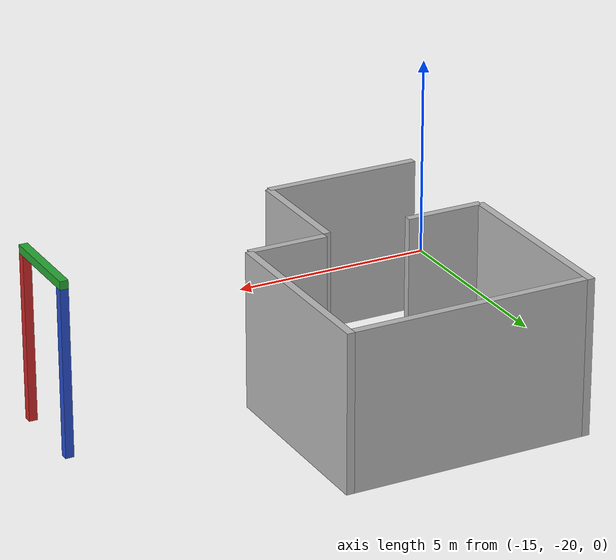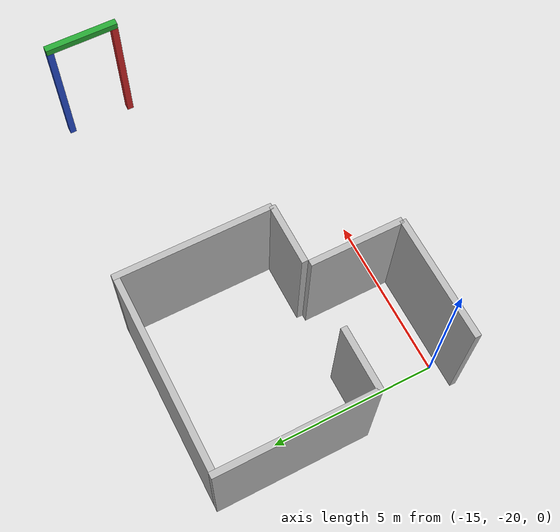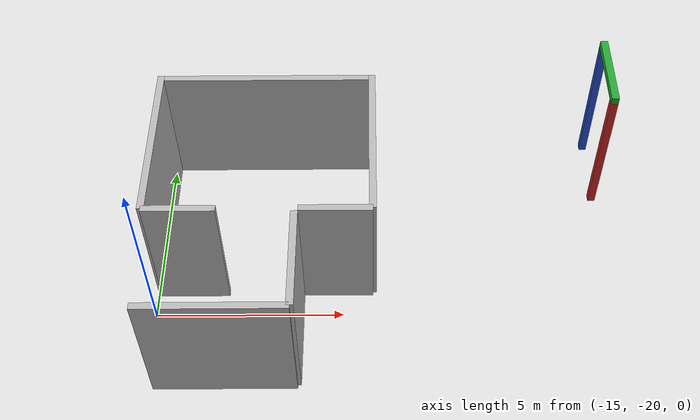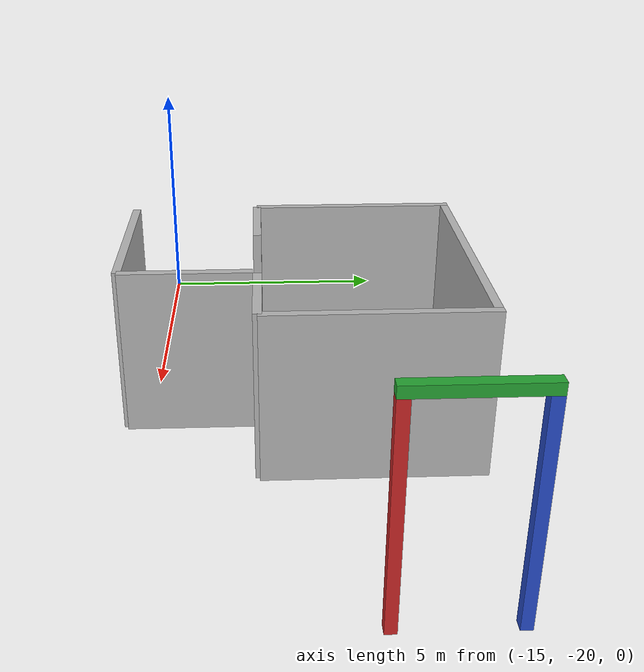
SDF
<sdf version="1.4">
 <world name="vrc_task_3">
  <scene><grid>false</grid><ambient>0.2 0.2 0.2 1.0</ambient></scene>
  <physics type="ode">
   <gravity>0 0 -9.81</gravity>
   <ode>
    <solver><type>quick</type><iters>50</iters><sor>1.4</sor></solver>
    <constraints>
     <cfm>0.0</cfm>
     <erp>0.2</erp>
     <contact_max_correcting_vel>100.0</contact_max_correcting_vel>
     <contact_surface_layer>0.0</contact_surface_layer>
    </constraints>
   </ode>
   <real_time_update_rate>1000</real_time_update_rate>
   <max_step_size>0.001</max_step_size>
  </physics>
  <light type="directional" name="sun">
   <pose>0 0 100 0 0 0</pose>
   <diffuse>0.9 0.9 0.9 1</diffuse>
   <specular>0.1 0.1 0.1 1</specular>
   <attenuation>
    <range>1000</range>
    <constant>0.9</constant>
    <linear>0.01</linear>
    <quadratic>0.001</quadratic>
   </attenuation>
   <direction>0.2 0.2 -0.9</direction>
  </light>
  <light type="point" name="light_bulb_2">
   <cast_shadows>false</cast_shadows>
   <pose>-10.6 -19.8 5 0 0 0</pose>
   <diffuse>0.5 0.5 0.5 1</diffuse>
   <specular>0.0 0.0 0.0 1</specular>
   <attenuation>
    <range>80</range>
    <constant>0.9</constant>
    <linear>0.01</linear>
    <quadratic>0.001</quadratic>
   </attenuation>
  </light>
  <include><uri>model://starting_pen</uri><pose>-12.31 -15 0 0 0 -1.5707</pose></include>
  <include><uri>model://gate</uri><name>gate_0</name><pose>-2.86 -15 2.0 0 0 0</pose></include>
  <plugin filename="libVRCPlugin.so" name="vrc_plugin">
   <atlas><model_name>atlas</model_name><pin_link>pelvis</pin_link></atlas>
   <drc_vehicle><model_name>golf_cart</model_name><seat_link>chassis</seat_link></drc_vehicle>
   <drc_fire_hose>
    <fire_hose_model>vrc_firehose_long</fire_hose_model>
    <coupling_link>coupling</coupling_link>
    <standpipe_model>standpipe</standpipe_model>
    <spout_link>standpipe</spout_link>
    <valve_model>valve</valve_model>
    <valve_joint>valve</valve_joint>
    <thread_pitch>-1000</thread_pitch>
    <coupling_relative_pose>1.17038e-05 -0.125623 0.35 -0.0412152 -1.57078 1.61199</coupling_relative_pose>
   </drc_fire_hose>
  </plugin>
  <plugin filename="libVRCScoringPlugin.so" name="vrc_scoring">
   <score_file>/tmp/vrc_final_task12/score.log</score_file>
  </plugin>
 </world>
</sdf>

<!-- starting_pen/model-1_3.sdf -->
<sdf version="1.3">
  <model name="starting_pen">
    <static>true</static>
    <pose>-2.0 0 2.0 0 0 0</pose>

    <link name="link">
      <collision name="back_collision">
        <pose>-2 0 0 0 0 0</pose>
        <geometry>
          <box>
            <size>0.2 6 4.0</size>
          </box>
        </geometry>
      </collision>
      <visual name="back_visual">
        <pose>-2 0 0 0 0 0</pose>
        <geometry>
          <box>
            <size>0.2 6 4.0</size>
          </box>
        </geometry>
        <material>
          <script>
            <uri>file://media/materials/scripts/drc_qual.material</uri>
            <name>DRCQual/WarningWall</name>
          </script>
        </material>
      </visual>

      <collision name="left_collision">
        <pose>0.4 -3.1 0 0 0 0</pose>
        <geometry>
          <box>
            <size>5 0.2 4.0</size>
          </box>
        </geometry>
      </collision>
      <visual name="left_visual_lower">
        <pose>0.4 -3.1 0.0 0 0 0</pose>
        <geometry>
          <box>
            <size>5 0.2 4.0</size>
          </box>
        </geometry>
        <material>
          <script>
            <uri>file://media/materials/scripts/drc_qual.material</uri>
            <name>DRCQual/WarningWall</name>
          </script>
        </material>
      </visual>

      <collision name="right_collision">
        <pose>0.4 3.1 0 0 0 0</pose>
        <geometry>
          <box>
            <size>5 0.2 4.0</size>
          </box>
        </geometry>
      </collision>
      <visual name="right_visual">
        <pose>0.4 3.1 0 0 0 0</pose>
        <geometry>
          <box>
            <size>5 0.2 4.0</size>
          </box>
        </geometry>
        <material>
          <script>
            <uri>file://media/materials/scripts/drc_qual.material</uri>
            <name>DRCQual/WarningWall</name>
          </script>
        </material>
      </visual>

      <collision name="front_right_collision">
        <pose>2.9 2.1 0 0 0 0</pose>
        <geometry>
          <box>
            <size>0.2 2.0 4.0</size>
          </box>
        </geometry>
      </collision>
      <visual name="front_right_visual">
        <pose>2.9 2.1 0 0 0 0</pose>
        <geometry>
          <box>
            <size>0.2 2.0 4.0</size>
          </box>
        </geometry>
        <material>
          <script>
            <uri>file://media/materials/scripts/drc_qual.material</uri>
            <name>DRCQual/WarningWall</name>
          </script>
        </material>
      </visual>

      <collision name="front_left_collision">
        <pose>2.9 -2.1 0 0 0 0</pose>
        <geometry>
          <box>
            <size>0.2 2.0 4.0</size>
          </box>
        </geometry>
      </collision>
      <visual name="front_left_visual">
        <pose>2.9 -2.1 0 0 0 0</pose>
        <geometry>
          <box>
            <size>0.2 2.0 4.0</size>
          </box>
        </geometry>
        <material>
          <script>
            <uri>file://media/materials/scripts/drc_qual.material</uri>
            <name>DRCQual/WarningWall</name>
          </script>
        </material>
      </visual>

      <collision name="front_collision">
        <pose>6.0 -1 0 0 0 0</pose>
        <geometry>
          <box>
            <size>0.2 4 4.0</size>
          </box>
        </geometry>
      </collision>
      <visual name="front_visual">
        <pose>6.0 -1 0 0 0 3.1415</pose>
        <geometry>
          <mesh>
            <uri>model://arrow_wall/meshes/arrow_wall.dae</uri>
          </mesh>
        </geometry>
      </visual>

      <collision name="entryway_collision">
        <pose>4.5 1.0 0 0 0 0</pose>
        <geometry>
          <box>
            <size>3.0 .2 4.0</size>
          </box>
        </geometry>
      </collision>
      <visual name="entryway_visual">
        <pose>4.5 1.0 0 0 0 0</pose>
        <geometry>
          <box>
            <size>3.0 .2 4.0</size>
          </box>
        </geometry>
        <material>
          <script>
            <uri>file://media/materials/scripts/drc_qual.material</uri>
            <name>DRCQual/WarningWall</name>
          </script>
        </material>
      </visual>

    </link>
  </model>
</sdf>

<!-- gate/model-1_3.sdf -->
<sdf version="1.3">

  <model name="gate">
    <static>true</static>
    <pose>0 0 2.0 0 0 0</pose>
    <link name="link">
      <collision name="right_collision">
        <pose>0 -1.0 0 0 0 0</pose>
        <geometry>
          <box>
            <size>0.2 0.2 4.0</size>
          </box>
        </geometry>
      </collision>
      <visual name="right_visual">
        <pose>0 -1.0 0 0 0 0</pose>
        <geometry>
          <box>
            <size>0.2 0.2 4.0</size>
          </box>
        </geometry>
        <material>
          <script>
            <uri>model://gate/materials/scripts/gate.material</uri>
            <uri>model://gate/materials/textures</uri>
            <name>vrc/red_gate</name>
          </script>
        </material>
      </visual>

      <collision name="left_collision">
        <pose>0 1.0 0 0 0 0</pose>
        <geometry>
          <box>
            <size>0.2 0.2 4.0</size>
          </box>
        </geometry>
      </collision>
      <visual name="left_visual">
        <pose>0 1.0 0 0 0 0</pose>
        <geometry>
          <box>
            <size>0.2 0.2 4.0</size>
          </box>
        </geometry>
        <material>
          <script>
            <uri>model://gate/materials/scripts/gate.material</uri>
            <uri>model://gate/materials/textures</uri>
            <name>vrc/blue_gate</name>
          </script>
        </material>
      </visual>

      <collision name="top_collision">
        <pose>0 0 2.1 0 0 0</pose>
        <geometry>
          <box>
            <size>0.2 2.2 0.2</size>
          </box>
        </geometry>
      </collision>
      <visual name="top_visual">
        <pose>0 0 2.1 0 0 0</pose>
        <geometry>
          <box>
            <size>0.2 2.2 0.2</size>
          </box>
        </geometry>
        <material>
          <script>
            <uri>model://gate/materials/scripts/gate.material</uri>
            <uri>model://gate/materials/textures</uri>
            <name>vrc/green_gate</name>
          </script>
        </material>
      </visual>
    </link>
  </model>
</sdf>
